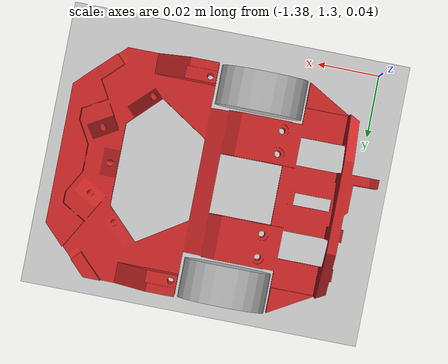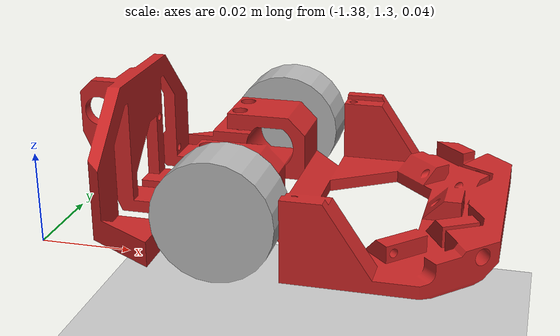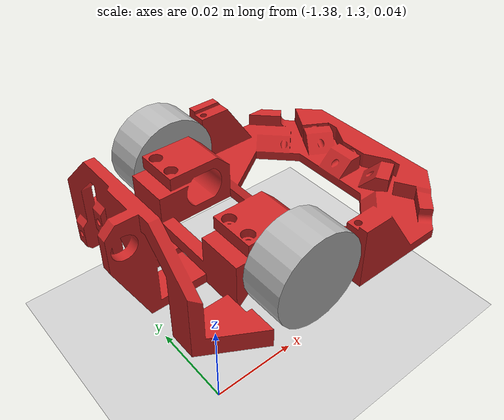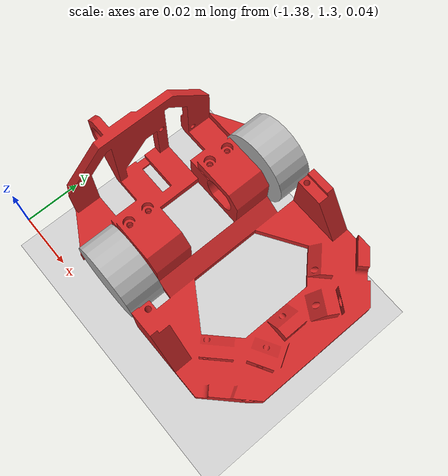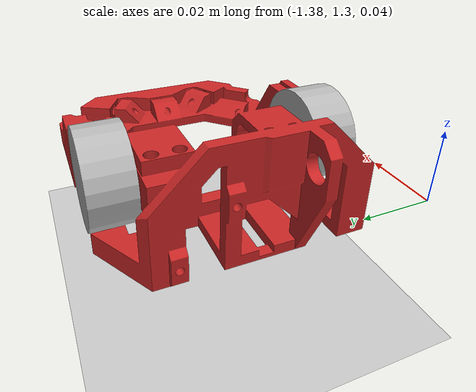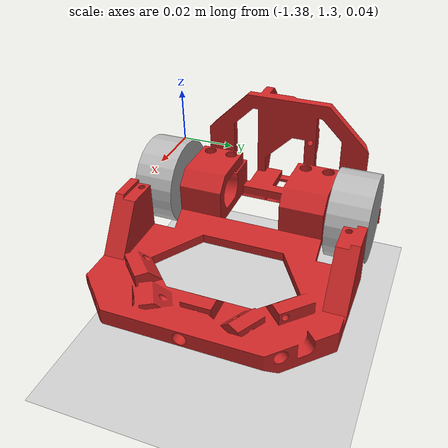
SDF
<?xml version="1.0"?>
<sdf version="1.6">
  <world name="default">
    <include>
      <uri>model://ground_plane</uri>
    </include>

    <include>
      <uri>model://sun</uri>
    </include>

    <include>
      <pose>-1.344 1.344 0.025 0 0 0</pose>
      <uri>model://mouse</uri>
    </include>

    <gui>
      <plugin name="sample" filename="libregenerate_widget.so"/>
    </gui>

    <plugin name="maze" filename="libmaze_plugin.so"/>

		<physics type="ode">
      <real_time_update_rate>1000.0</real_time_update_rate>
    </physics>
  </world>
</sdf>

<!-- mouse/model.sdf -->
<sdf version='1.6'>
  <model name='mouse'>
    <link name='base'>
      <pose>0 0 0.005 0 0 0</pose>
      <inertial>
        <pose frame=''>-0.002 0.0 0.01 0 0 0</pose>
        <mass>0.5</mass>
        <inertia>
          <ixx>0.00022083</ixx>
          <ixy>0</ixy>
          <ixz>0</ixz>
          <iyy>0.00022083</iyy>
          <iyz>0</iyz>
          <izz>0.00040833</izz>
        </inertia>
      </inertial>
      <visual name='whole_robot_visual'>
        <pose>0 0.032 0.015 1.5707 0 0</pose>
        <geometry>
          <mesh>
            <uri>model://mouse/body.stl</uri>
            <scale>0.001 0.001 0.001</scale>
          </mesh>
        </geometry>
        <material>
          <script>
            <name>Gazebo/Red</name>
            <uri>file://media/materials/scripts/gazebo.material</uri>
          </script>
        </material>
      </visual>
      <collision name='body_collision'>
        <pose frame=''>0.0095 0 0.0185 0 0 0</pose>
        <geometry>
          <box>
            <size>0.101 0.076 0.035</size>
          </box>
        </geometry>
        <surface>
          <friction>
            <ode>
              <mu>0.01</mu>
              <mu2>0.01</mu2>
              <fdir1>0 0 0</fdir1>
              <slip1>0</slip1>
              <slip2>0</slip2>
            </ode>
          </friction>
          <contact>
            <ode>
              <soft_cfm>0</soft_cfm>
              <soft_erp>0.2</soft_erp>
              <kp>1e13</kp>
              <kd>1.0</kd>
              <max_vel>0.01</max_vel>
              <min_depth>0</min_depth>
            </ode>
          </contact>
        </surface>
      </collision>
      <sensor name="laser" type="ray">
        <pose>0.02 0.0 0.002 0 0 -1.57079</pose>
        <ray>
          <scan>
            <horizontal>
              <samples>3</samples>
              <resolution>1</resolution>
              <min_angle>0.52359877</min_angle>
              <max_angle>2.61799387</max_angle>
            </horizontal>
          </scan>
          <range>
            <min>0.01</min>
            <max>0.2</max>
            <resolution>0.005</resolution>
          </range>
        </ray>
        <plugin name="laser" filename="libRayPlugin.so" />
        <always_on>1</always_on>
        <update_rate>10</update_rate>
        <visualize>true</visualize>
      </sensor>
    </link>
    <link name='right_wheel'>
      <pose frame=''>0.0 0.0313 0.02 0 1.57079 1.57079</pose>
      <inertial>
        <mass>0.01</mass>
        <inertia>
          <ixx>6.2e-06</ixx>
          <ixy>0</ixy>
          <ixz>0</ixz>
          <iyy>6.2e-06</iyy>
          <iyz>0</iyz>
          <izz>9.8e-06</izz>
        </inertia>
        <pose frame=''>0 0 0 0 0 0</pose>
      </inertial>
      <self_collide>0</self_collide>
      <kinematic>0</kinematic>
      <gravity>1</gravity>
      <visual name='visual'>
        <pose frame=''>0 0 0 0 0 0</pose>
        <geometry>
          <cylinder>
            <radius>0.014</radius>
            <length>0.0127</length>
          </cylinder>
        </geometry>
      </visual>
      <collision name='collision'>
        <pose frame=''>0 0 0 0 0 0</pose>
        <geometry>
          <cylinder>
            <radius>0.014</radius>
            <length>0.0127</length>
          </cylinder>
        </geometry>
        <surface>
          <friction>
            <ode>
              <mu>10</mu>
              <mu2>10</mu2>
            </ode>
            <torsional>
              <coefficient>1</coefficient>
              <patch_radius>0</patch_radius>
              <surface_radius>0</surface_radius>
              <use_patch_radius>1</use_patch_radius>
              <ode>
                <slip>0</slip>
              </ode>
            </torsional>
          </friction>
          <bounce>
            <restitution_coefficient>0</restitution_coefficient>
            <threshold>1e+06</threshold>
          </bounce>
          <contact>
            <collide_without_contact>0</collide_without_contact>
            <collide_without_contact_bitmask>1</collide_without_contact_bitmask>
            <collide_bitmask>1</collide_bitmask>
            <ode>
              <soft_cfm>0</soft_cfm>
              <soft_erp>0.2</soft_erp>
              <kp>1000000.0</kp>
              <kd>100.0</kd>
              <max_vel>0.01</max_vel>
              <min_depth>0</min_depth>
            </ode>
          </contact>
        </surface>
      </collision>
    </link>
    <link name='left_wheel'>
      <pose frame=''>0.0 -0.0313 0.02 0 1.57079 1.57079</pose>
      <inertial>
        <mass>0.01</mass>
        <inertia>
          <ixx>6.2e-06</ixx>
          <ixy>0</ixy>
          <ixz>0</ixz>
          <iyy>6.2e-06</iyy>
          <iyz>0</iyz>
          <izz>9.6e-06</izz>
        </inertia>
      </inertial>
      <self_collide>0</self_collide>
      <kinematic>0</kinematic>
      <visual name='visual'>
        <pose frame=''>0 0 0 0 0 0</pose>
        <geometry>
          <cylinder>
            <radius>0.014</radius>
            <length>0.0127</length>
          </cylinder>
        </geometry>
      </visual>
      <collision name='collision'>
        <pose frame=''>0 0 0 0 0 0</pose>
        <geometry>
          <cylinder>
            <radius>0.014</radius>
            <length>0.0127</length>
          </cylinder>
        </geometry>
        <surface>
          <friction>
            <ode>
              <mu>10</mu>
              <mu2>10</mu2>
            </ode>
            <torsional>
              <coefficient>1</coefficient>
              <patch_radius>0</patch_radius>
              <surface_radius>0</surface_radius>
              <use_patch_radius>1</use_patch_radius>
              <ode>
                <slip>0</slip>
              </ode>
            </torsional>
          </friction>
          <bounce>
            <restitution_coefficient>0</restitution_coefficient>
            <threshold>1e+06</threshold>
          </bounce>
          <contact>
            <collide_without_contact>0</collide_without_contact>
            <collide_without_contact_bitmask>1</collide_without_contact_bitmask>
            <collide_bitmask>1</collide_bitmask>
            <ode>
              <soft_cfm>0</soft_cfm>
              <soft_erp>0.2</soft_erp>
              <kp>1000000.0</kp>
              <kd>100.0</kd>
              <max_vel>0.01</max_vel>
              <min_depth>0</min_depth>
            </ode>
          </contact>
        </surface>
      </collision>
    </link>
    <joint name='left_wheel_joint' type='revolute'>
      <parent>base</parent>
      <child>left_wheel</child>
      <pose frame=''>0 0 0 0 0 0</pose>
      <axis>
        <xyz>0 0 1</xyz>
        <use_parent_model_frame>0</use_parent_model_frame>
        <limit>
          <lower>-1.79769e+308</lower>
          <upper>1.79769e+308</upper>
          <effort>-1</effort>
          <velocity>100</velocity>
        </limit>
        <dynamics>
          <spring_reference>0</spring_reference>
          <spring_stiffness>0</spring_stiffness>
          <damping>0.01</damping>
          <friction>0</friction>
        </dynamics>
      </axis>
      <physics>
        <ode>
          <implicit_spring_damper>true</implicit_spring_damper>
          <limit>
            <cfm>0</cfm>
            <erp>0.2</erp>
          </limit>
          <suspension>
            <cfm>0</cfm>
            <erp>0.2</erp>
          </suspension>
        </ode>
      </physics>
    </joint>
    <joint name='right_wheel_joint' type='revolute'>
      <parent>base</parent>
      <child>right_wheel</child>
      <pose frame=''>0 0 0 0 0 0</pose>
      <axis>
        <xyz>0 0 1</xyz>
        <use_parent_model_frame>0</use_parent_model_frame>
        <limit>
          <lower>-1.79769e+308</lower>
          <upper>1.79769e+308</upper>
          <effort>-1</effort>
          <velocity>100</velocity>
        </limit>
        <dynamics>
          <spring_reference>0</spring_reference>
          <spring_stiffness>0</spring_stiffness>
          <damping>0.01</damping>
          <friction>0</friction>
        </dynamics>
      </axis>
      <physics>
        <ode>
          <implicit_spring_damper>true</implicit_spring_damper>
          <limit>
            <cfm>0</cfm>
            <erp>0.2</erp>
          </limit>
          <suspension>
            <cfm>0</cfm>
            <erp>0.2</erp>
          </suspension>
        </ode>
      </physics>
    </joint>
    <static>0</static>
    <allow_auto_disable>1</allow_auto_disable>
		<plugin name="mouse_plugin" filename="libmouse_plugin.so">
      <left_wheel_joint>left_wheel_joint</left_wheel_joint>
      <right_wheel_joint>right_wheel_joint</right_wheel_joint>
      <body>base</body>
		</plugin>
  </model>
</sdf>
